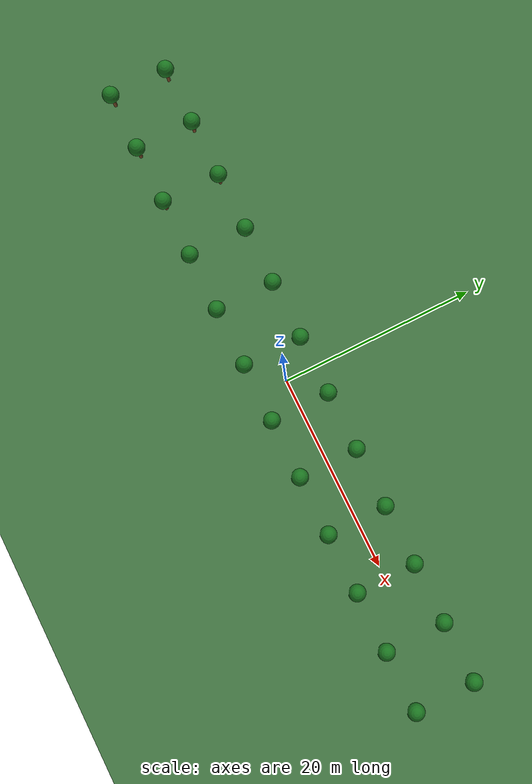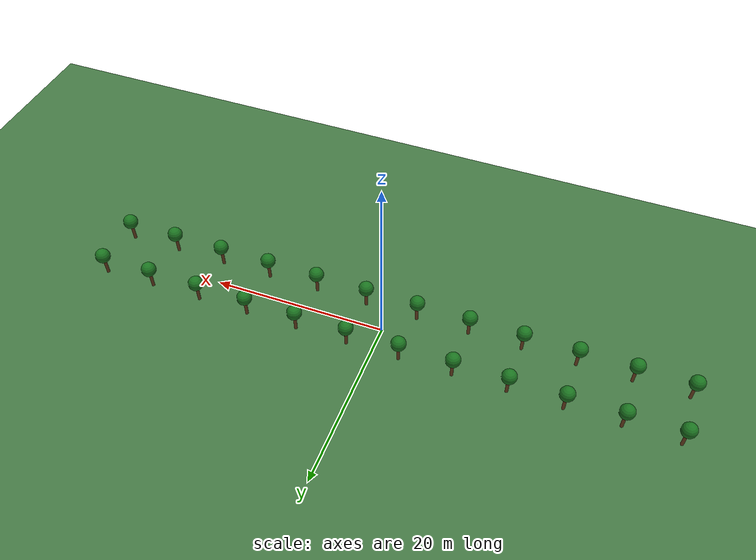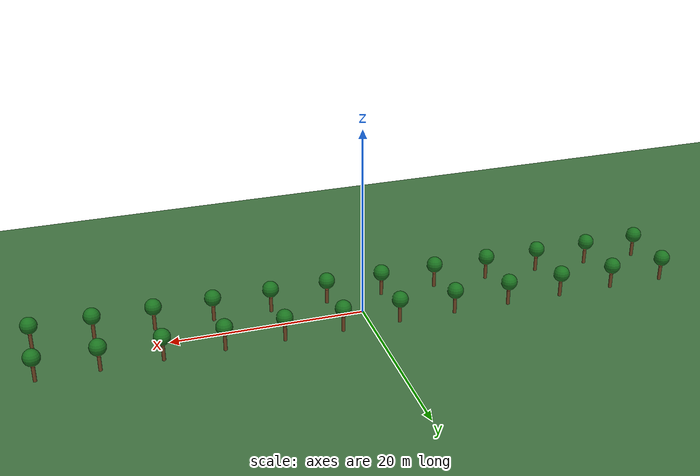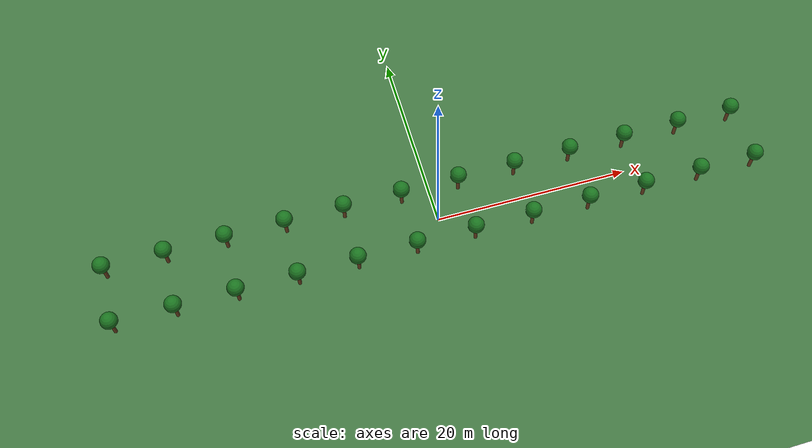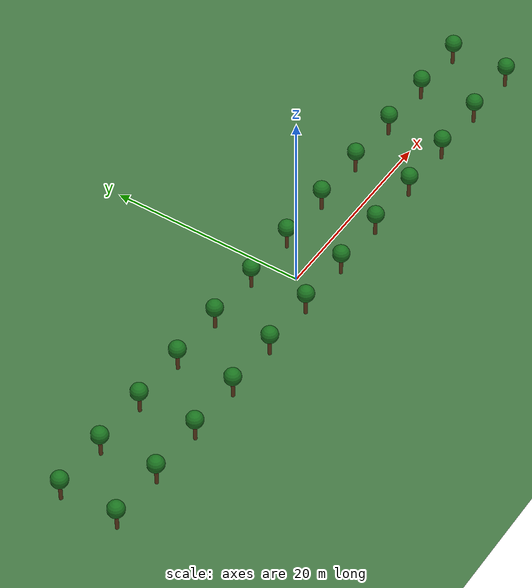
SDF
<?xml version="1.0" ?>
<sdf version="1.8">
  <world name="orchard_world">
    <!-- Basic lighting / physics -->
    <physics name="1ms" type="ignored">
      <max_step_size>0.001</max_step_size>
      <real_time_factor>1</real_time_factor>
    </physics>

    <scene>
      <ambient>0.6 0.6 0.6 1</ambient>
      <background>0.85 0.9 1 1</background>
    </scene>

    <!-- Sun -->
    <light name="sun" type="directional">
      <cast_shadows>true</cast_shadows>
      <pose>0 0 10 0 0 0</pose>
      <diffuse>1 1 1 1</diffuse>
      <specular>0.2 0.2 0.2 1</specular>
      <direction>-0.2 0.2 -1</direction>
    </light>

    <!-- Ground plane -->
    <model name="ground_plane">
      <static>true</static>
      <link name="link">
        <collision name="collision">
          <geometry>
            <plane>
              <normal>0 0 1</normal>
              <size>200 200</size>
            </plane>
          </geometry>
          <surface>
            <friction>
              <ode>
                <mu>1.0</mu>
                <mu2>1.0</mu2>
              </ode>
            </friction>
          </surface>
        </collision>
        <visual name="visual">
          <geometry>
            <plane>
              <normal>0 0 1</normal>
              <size>200 200</size>
            </plane>
          </geometry>
          <material>
            <ambient>0.25 0.35 0.25 1</ambient>
            <diffuse>0.25 0.45 0.25 1</diffuse>
            <specular>0.01 0.01 0.01 1</specular>
          </material>
        </visual>
      </link>
    </model>

    <!-- Row 1 (y = -3) -->
    <include>
      <name>pine_r1_00</name>
      <pose>-33 -3 0 0 0 0</pose>
      <uri>model://simple_tree</uri>
    </include>
    <include>
      <name>pine_r1_01</name>
      <pose>-27 -3 0 0 0 0</pose>
      <uri>model://simple_tree</uri>
    </include>
    <include>
      <name>pine_r1_02</name>
      <pose>-21 -3 0 0 0 0</pose>
      <uri>model://simple_tree</uri>
    </include>
    <include>
      <name>pine_r1_03</name>
      <pose>-15 -3 0 0 0 0</pose>
      <uri>model://simple_tree</uri>
    </include>
    <include>
      <name>pine_r1_04</name>
      <pose>-9 -3 0 0 0 0</pose>
      <uri>model://simple_tree</uri>
    </include>
    <include>
      <name>pine_r1_05</name>
      <pose>-3 -3 0 0 0 0</pose>
      <uri>model://simple_tree</uri>
    </include>
    <include>
      <name>pine_r1_06</name>
      <pose>3 -3 0 0 0 0</pose>
      <uri>model://simple_tree</uri>
    </include>
    <include>
      <name>pine_r1_07</name>
      <pose>9 -3 0 0 0 0</pose>
      <uri>model://simple_tree</uri>
    </include>
    <include>
      <name>pine_r1_08</name>
      <pose>15 -3 0 0 0 0</pose>
      <uri>model://simple_tree</uri>
    </include>
    <include>
      <name>pine_r1_09</name>
      <pose>21 -3 0 0 0 0</pose>
      <uri>model://simple_tree</uri>
    </include>
    <include>
      <name>pine_r1_10</name>
      <pose>27 -3 0 0 0 0</pose>
      <uri>model://simple_tree</uri>
    </include>
    <include>
      <name>pine_r1_11</name>
      <pose>33 -3 0 0 0 0</pose>
      <uri>model://simple_tree</uri>
    </include>

    <!-- Row 2 (y = +3) -->
    <include>
      <name>pine_r2_00</name>
      <pose>-33 3 0 0 0 0</pose>
      <uri>model://simple_tree</uri>
    </include>
    <include>
      <name>pine_r2_01</name>
      <pose>-27 3 0 0 0 0</pose>
      <uri>model://simple_tree</uri>
    </include>
    <include>
      <name>pine_r2_02</name>
      <pose>-21 3 0 0 0 0</pose>
      <uri>model://simple_tree</uri>
    </include>
    <include>
      <name>pine_r2_03</name>
      <pose>-15 3 0 0 0 0</pose>
      <uri>model://simple_tree</uri>
    </include>
    <include>
      <name>pine_r2_04</name>
      <pose>-9 3 0 0 0 0</pose>
      <uri>model://simple_tree</uri>
    </include>
    <include>
      <name>pine_r2_05</name>
      <pose>-3 3 0 0 0 0</pose>
      <uri>model://simple_tree</uri>
    </include>
    <include>
      <name>pine_r2_06</name>
      <pose>3 3 0 0 0 0</pose>
      <uri>model://simple_tree</uri>
    </include>
    <include>
      <name>pine_r2_07</name>
      <pose>9 3 0 0 0 0</pose>
      <uri>model://simple_tree</uri>
    </include>
    <include>
      <name>pine_r2_08</name>
      <pose>15 3 0 0 0 0</pose>
      <uri>model://simple_tree</uri>
    </include>
    <include>
      <name>pine_r2_09</name>
      <pose>21 3 0 0 0 0</pose>
      <uri>model://simple_tree</uri>
    </include>
    <include>
      <name>pine_r2_10</name>
      <pose>27 3 0 0 0 0</pose>
      <uri>model://simple_tree</uri>
    </include>
    <include>
      <name>pine_r2_11</name>
      <pose>33 3 0 0 0 0</pose>
      <uri>model://simple_tree</uri>
    </include>
  </world>
</sdf>

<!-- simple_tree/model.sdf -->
<sdf version="1.8">
  <model name="simple_tree">
    <static>true</static>
    <link name="link">
      <!-- Trunk -->
      <pose>0 0 0.8 0 0 0</pose>
      <collision name="trunk_collision">
        <geometry>
          <cylinder>
            <radius>0.18</radius>
            <length>1.6</length>
          </cylinder>
        </geometry>
      </collision>
      <visual name="trunk_visual">
        <geometry>
          <cylinder>
            <radius>0.18</radius>
            <length>1.6</length>
          </cylinder>
        </geometry>
        <material>
          <ambient>0.35 0.22 0.12 1</ambient>
          <diffuse>0.45 0.28 0.14 1</diffuse>
          <specular>0.05 0.05 0.05 1</specular>
        </material>
      </visual>

      <!-- Foliage canopy (simple ellipsoid using scaled sphere) -->
      <collision name="canopy_collision">
        <pose>0 0 1.8 0 0 0</pose>
        <geometry>
          <sphere>
            <radius>0.85</radius>
          </sphere>
        </geometry>
      </collision>
      <visual name="canopy_visual">
        <pose>0 0 1.8 0 0 0</pose>
        <geometry>
          <sphere>
            <radius>0.85</radius>
          </sphere>
        </geometry>
        <material>
          <ambient>0.12 0.25 0.12 1</ambient>
          <diffuse>0.10 0.45 0.12 1</diffuse>
          <specular>0.02 0.02 0.02 1</specular>
        </material>
      </visual>
    </link>
  </model>
</sdf>
